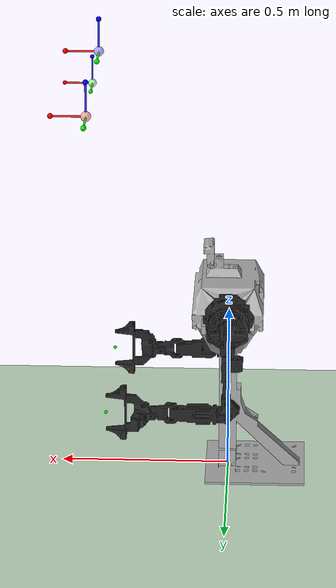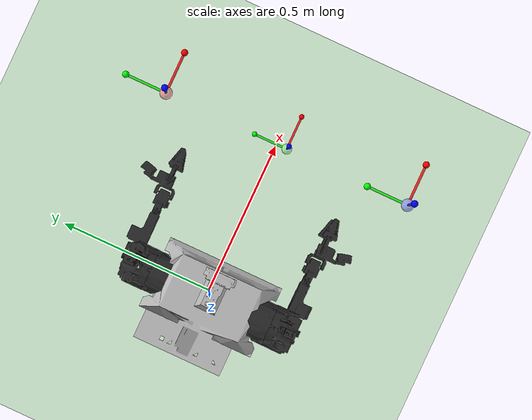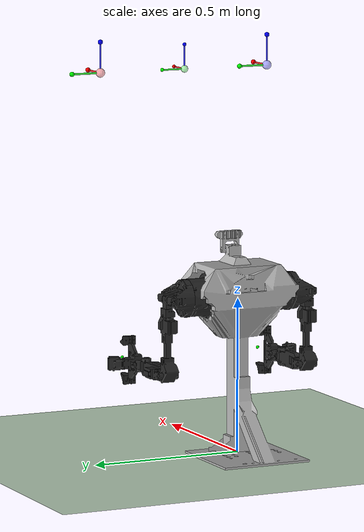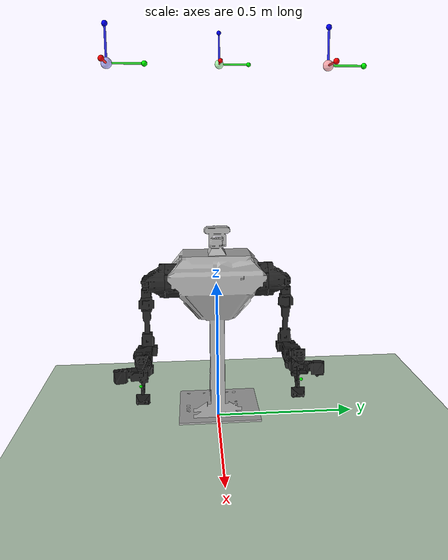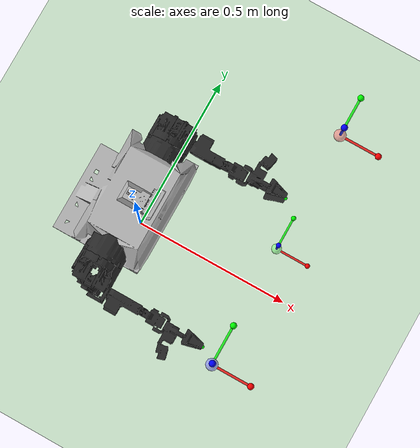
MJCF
<mujoco model="Bessica_D_v1_1_skeleton">
  <compiler angle="radian" meshdir="../../meshes/Bessica_D_v1_1/SkeletonOnly/"/>

  <asset>
    <mesh name="base_link" file="base_link.STL"/>
    <mesh name="head" file="head.STL"/>
    <mesh name="right_arm_base_link" file="right_arm_base_link.STL"/>
    <mesh name="right_arm_link1" file="right_arm_link1.STL"/>
    <mesh name="right_arm_link2" file="right_arm_link2.STL"/>
    <mesh name="right_arm_link3" file="right_arm_link3.STL"/>
    <mesh name="right_arm_link4" file="right_arm_link4.STL"/>
    <mesh name="right_arm_link5" file="right_arm_link5.STL"/>
    <mesh name="right_arm_link6" file="right_arm_link6.STL"/>
    <mesh name="right_arm_link7" file="right_arm_link7.STL"/>
    <mesh name="right_arm_gripper_left_finger" file="right_arm_gripper_left_finger.STL"/>
    <mesh name="right_arm_gripper_right_finger" file="right_arm_gripper_right_finger.STL"/>
    <mesh name="left_arm_base_link" file="left_arm_base_link.STL"/>
    <mesh name="left_arm_link1" file="left_arm_link1.STL"/>
    <mesh name="left_arm_link2" file="left_arm_link2.STL"/>
    <mesh name="left_arm_link3" file="left_arm_link3.STL"/>
    <mesh name="left_arm_link4" file="left_arm_link4.STL"/>
    <mesh name="left_arm_link5" file="left_arm_link5.STL"/>
    <mesh name="left_arm_link6" file="left_arm_link6.STL"/>
    <mesh name="left_arm_link7" file="left_arm_link7.STL"/>
    <mesh name="left_arm_gripper_right_finger" file="left_arm_gripper_right_finger.STL"/>
    <mesh name="left_arm_gripper_left_finger" file="left_arm_gripper_left_finger.STL"/>
    <texture builtin="gradient" height="100" rgb1=".4 .5 .6" rgb2="0 0 0" type="skybox" width="100" />
    <texture builtin="checker" height="100" name="texplane" rgb1="1 1 1" rgb2=".8 .9 1" type="2d" width="100" />
    <material name="MatPlane" reflectance="0.5" texrepeat="1 1" texture="texplane" texuniform="true" />
    <material name="white" rgba="1 1 1 1" shininess="0.5" specular="0.1" />
    <material name="black" rgba="0.15 0.15 0.15 1" shininess="0.2" specular="0.05" />
    <material name="invisible" rgba="1 1 1 0" shininess="0" specular="0" />
  </asset>

  <worldbody>
    <geom conaffinity="1" condim="3" contype="1" friction="1 .1 .1" group="2" material="MatPlane" name="floor" pos="0 0 0" rgba="0.8 0.9 0.8 1" size="10 10 0.125" type="plane" />
    <light castshadow="false" cutoff="100" diffuse="1 1 1" dir="-0 0 -1.3" directional="true" exponent="1" pos="0 0 1.3" specular=".1 .1 .1" />
    <body name="base_link" pos="0 0 0" quat="1 0 0 0">
      <geom type="mesh" contype="0" conaffinity="0" group="1" density="0" rgba="0.7 0.7 0.7 1" mesh="base_link"/>
      <geom type="mesh" rgba="0.7 0.7 0.7 1" mesh="base_link"/>
      <geom pos="0.0608245 0.00175926 0.700041" type="mesh" contype="0" conaffinity="0" group="1" density="0" rgba="0.7 0.7 0.7 1" mesh="head"/>
      <geom pos="0.0608245 0.00175926 0.700041" type="mesh" rgba="0.7 0.7 0.7 1" mesh="head"/>
      <geom pos="-5.01018e-07 -0.0899997 0.514501" quat="1.34924e-11 -3.67321e-06 -1 3.67321e-06" type="mesh" contype="0" conaffinity="0" group="1" density="0" rgba="0.15 0.15 0.15 1" mesh="right_arm_base_link"/>
      <geom pos="-5.01018e-07 -0.0899997 0.514501" quat="1.34924e-11 -3.67321e-06 -1 3.67321e-06" type="mesh" rgba="0.15 0.15 0.15 1" mesh="right_arm_base_link"/>
      <geom pos="8.16691e-09 0.09 0.5145" quat="0 0 -0.707107 -0.707107" type="mesh" contype="0" conaffinity="0" group="1" density="0" rgba="0.15 0.15 0.15 1" mesh="left_arm_base_link"/>
      <geom pos="8.16691e-09 0.09 0.5145" quat="0 0 -0.707107 -0.707107" type="mesh" rgba="0.15 0.15 0.15 1" mesh="left_arm_base_link"/>
      <body name="right_arm_link1" pos="4.86521e-05 -0.2046 0.514502" quat="1.34924e-11 -3.67321e-06 -1 3.67321e-06">
        <inertial pos="0.000110932 -0.00312062 0.000177905" quat="0.503324 0.499404 0.49881 0.498447" mass="0.208266" diaginertia="0.00034002 0.000262863 0.000150646"/>
        <joint name="right_arm_joint1" pos="0 0 0" axis="0 -1 0" range="-2.749 2.749" actuatorfrcrange="-5 5"/>
        <geom type="mesh" contype="0" conaffinity="0" group="1" density="0" rgba="0.15 0.15 0.15 1" mesh="right_arm_link1"/>
        <geom type="mesh" rgba="0.15 0.15 0.15 1" mesh="right_arm_link1"/>
        <body name="right_arm_link2" pos="0 -0.04286 0" quat="0.707105 0 0.707108 0">
          <inertial pos="-0.0297081 -0.000293736 -0.000469869" quat="0.480696 0.536148 0.512721 0.46754" mass="0.0472691" diaginertia="1.62077e-05 1.58746e-05 7.75482e-06"/>
          <joint name="right_arm_joint2" pos="0 0 0" axis="0 0 1" range="-0.1 3.1416" actuatorfrcrange="-5 5"/>
          <geom type="mesh" contype="0" conaffinity="0" group="1" density="0" rgba="0.15 0.15 0.15 1" mesh="right_arm_link2"/>
          <geom type="mesh" rgba="0.15 0.15 0.15 1" mesh="right_arm_link2"/>
          <body name="right_arm_link3" pos="-0.06455 0 -0.0003" quat="-2.59734e-06 0.707105 -2.59735e-06 -0.707108">
            <inertial pos="-0.00359313 -0.000221911 0.094469" quat="0.709839 0.0300787 0.0347342 0.702864" mass="0.140452" diaginertia="8.80484e-05 7.8681e-05 5.52303e-05"/>
            <joint name="right_arm_joint3" pos="0 0 0" axis="0 0 1" range="-2.79 2.79" actuatorfrcrange="-5 5"/>
            <geom type="mesh" contype="0" conaffinity="0" group="1" density="0" rgba="0.15 0.15 0.15 1" mesh="right_arm_link3"/>
            <geom type="mesh" rgba="0.15 0.15 0.15 1" mesh="right_arm_link3"/>
            <body name="right_arm_link4" pos="-1.8989e-05 -4.9997e-05 0.1816" quat="0.499998 0.5 0.5 -0.500002">
              <inertial pos="-2.80229e-05 0.0241583 4.84136e-05" quat="1 0 0 -0.000169427" mass="0.0427207" diaginertia="1.04868e-05 8.49768e-06 8.00565e-06"/>
              <joint name="right_arm_joint4" pos="0 0 0" axis="0 0 1" range="-0.5236 2.95" actuatorfrcrange="-5 5"/>
              <geom type="mesh" contype="0" conaffinity="0" group="1" density="0" rgba="0.15 0.15 0.15 1" mesh="right_arm_link4"/>
              <geom type="mesh" rgba="0.15 0.15 0.15 1" mesh="right_arm_link4"/>
              <body name="right_arm_link5" pos="0 0.0488 0.000100003" quat="-0.5 0.5 0.5 0.5">
                <inertial pos="-0.00180911 -0.000196778 0.0430793" quat="0.96714 0.0368465 0.108778 0.226828" mass="0.110397" diaginertia="8.7423e-05 8.69117e-05 4.35431e-05"/>
                <joint name="right_arm_joint5" pos="0 0 0" axis="0 0 1" range="-2.79 2.79" actuatorfrcrange="-5 5"/>
                <geom type="mesh" contype="0" conaffinity="0" group="1" density="0" rgba="0.15 0.15 0.15 1" mesh="right_arm_link5"/>
                <geom type="mesh" rgba="0.15 0.15 0.15 1" mesh="right_arm_link5"/>
                <body name="right_arm_link6" pos="0.00289 -0.0020761 0.10801" quat="0.707105 -0.707108 0 0">
                  <inertial pos="0.000365898 -0.0257376 -4.10017e-05" quat="0.999601 0.00397576 0.000622093 -0.0279465" mass="0.0345707" diaginertia="1.56449e-05 1.27188e-05 9.19996e-06"/>
                  <joint name="right_arm_joint6" pos="0 0 0" axis="0 0 -1" range="-1.675 1.675" actuatorfrcrange="-5 5"/>
                  <geom type="mesh" contype="0" conaffinity="0" group="1" density="0" rgba="0.15 0.15 0.15 1" mesh="right_arm_link6"/>
                  <geom type="mesh" rgba="0.15 0.15 0.15 1" mesh="right_arm_link6"/>
                  <body name="right_arm_link7" pos="-0.0015 -0.05561 0" quat="0.499998 0.5 -0.500002 -0.5">
                    <inertial pos="0.0415076 -0.000152826 0.0262967" quat="0.698357 0.698702 -0.109714 0.109886" mass="0.134443" diaginertia="9.59304e-05 8.33778e-05 4.31456e-05"/>
                    <joint name="right_arm_joint7" pos="0 0 0" axis="0 0 1" range="-1.448 1.448" actuatorfrcrange="-5 5"/>
                    <geom type="mesh" contype="0" conaffinity="0" group="1" density="0" rgba="0.15 0.15 0.15 1" mesh="right_arm_link7"/>
                    <geom type="mesh" rgba="0.15 0.15 0.15 1" mesh="right_arm_link7"/>
                    <geom pos="0.14128 -0.0505 0.00015" quat="0.707105 -0.707108 0 0" type="mesh" contype="0" conaffinity="0" group="1" density="0" rgba="0.15 0.15 0.15 1" mesh="right_arm_gripper_left_finger"/>
                    <geom pos="0.14128 -0.0505 0.00015" quat="0.707105 -0.707108 0 0" type="mesh" rgba="0.15 0.15 0.15 1" mesh="right_arm_gripper_left_finger"/>
                    <geom pos="0.14128 0.0505 0.00015" quat="0.707105 0.707108 0 0" type="mesh" contype="0" conaffinity="0" group="1" density="0" rgba="0.15 0.15 0.15 1" mesh="right_arm_gripper_right_finger"/>
                    <geom pos="0.14128 0.0505 0.00015" quat="0.707105 0.707108 0 0" type="mesh" rgba="0.15 0.15 0.15 1" mesh="right_arm_gripper_right_finger"/>
                    <geom size="0.005" pos="0.14128 0 0.00015" contype="0" conaffinity="0" group="1" density="0" rgba="0 1 0 1"/>
                    <!-- Gripper center site (between fingers) -->
                    <site name="ik_offset_right_gripper" pos="0.14128 0 0.00015" size="0.005" rgba="1 0 0 0.5" />
                  </body>
                </body>
              </body>
            </body>
          </body>
        </body>
      </body>
      <body name="left_arm_link1" pos="-4.99893e-05 0.2046 0.5145" quat="0 0 -0.707107 0.707107">
        <inertial pos="-0.000114066 0.000187361 -0.00370369" quat="-0.000282854 0.70515 -0.00280194 0.709053" mass="0.197841" diaginertia="0.000335797 0.000260031 0.000148034"/>
        <joint name="left_arm_joint1" pos="0 0 0" axis="0 0 1" range="-2.749 2.749" actuatorfrcrange="-5 5"/>
        <geom type="mesh" contype="0" conaffinity="0" group="1" density="0" rgba="0.15 0.15 0.15 1" mesh="left_arm_link1"/>
        <geom type="mesh" rgba="0.15 0.15 0.15 1" mesh="left_arm_link1"/>
        <body name="left_arm_link2" pos="0 0 -0.04286" quat="0.5 0.5 -0.5 -0.5">
          <inertial pos="-0.0297081 -0.000293734 -0.000469873" quat="0.480696 0.536148 0.512721 0.46754" mass="0.0472691" diaginertia="1.62077e-05 1.58746e-05 7.75482e-06"/>
          <joint name="left_arm_joint2" pos="0 0 0" axis="0 0 1" range="-0.1 3.14159" actuatorfrcrange="-5 5"/>
          <geom type="mesh" contype="0" conaffinity="0" group="1" density="0" rgba="0.15 0.15 0.15 1" mesh="left_arm_link2"/>
          <geom type="mesh" rgba="0.15 0.15 0.15 1" mesh="left_arm_link2"/>
          <body name="left_arm_link3" pos="-0.06455 0 -0.000299996" quat="0.707107 0 -0.707107 0">
            <inertial pos="-0.00359314 -0.000221914 0.094469" quat="0.709839 0.0300787 0.0347342 0.702864" mass="0.140452" diaginertia="8.80484e-05 7.8681e-05 5.52303e-05"/>
            <joint name="left_arm_joint3" pos="0 0 0" axis="0 0 -1" range="-2.79 2.79" actuatorfrcrange="-5 5"/>
            <geom type="mesh" contype="0" conaffinity="0" group="1" density="0" rgba="0.15 0.15 0.15 1" mesh="left_arm_link3"/>
            <geom type="mesh" rgba="0.15 0.15 0.15 1" mesh="left_arm_link3"/>
            <body name="left_arm_link4" pos="-1.89942e-05 -5e-05 0.1816" quat="0.5 0.5 -0.5 0.5">
              <inertial pos="2.80229e-05 -0.0241582 4.84136e-05" quat="1 0 0 -0.000169427" mass="0.0427207" diaginertia="1.04868e-05 8.49768e-06 8.00565e-06"/>
              <joint name="left_arm_joint4" pos="0 0 0" axis="0 0 1" range="-0.5236 2.95" actuatorfrcrange="-5 5"/>
              <geom type="mesh" contype="0" conaffinity="0" group="1" density="0" rgba="0.15 0.15 0.15 1" mesh="left_arm_link4"/>
              <geom type="mesh" rgba="0.15 0.15 0.15 1" mesh="left_arm_link4"/>
              <body name="left_arm_link5" pos="0 -0.0488 0.0001" quat="0.5 0.5 0.5 -0.5">
                <inertial pos="-0.00180911 -0.000196785 0.0430793" quat="0.96714 0.0368465 0.108778 0.226827" mass="0.110397" diaginertia="8.7423e-05 8.69117e-05 4.35431e-05"/>
                <joint name="left_arm_joint5" pos="0 0 0" axis="0 0 -1" range="-2.79 2.79" actuatorfrcrange="-5 5"/>
                <geom type="mesh" contype="0" conaffinity="0" group="1" density="0" rgba="0.15 0.15 0.15 1" mesh="left_arm_link5"/>
                <geom type="mesh" rgba="0.15 0.15 0.15 1" mesh="left_arm_link5"/>
                <body name="left_arm_link6" pos="0.00289 -0.00207607 0.10801" quat="0.707107 -0.707107 0 0">
                  <inertial pos="0.000365898 -0.0257376 -4.10017e-05" quat="0.999601 0.00397576 0.000622093 -0.0279465" mass="0.0345707" diaginertia="1.56449e-05 1.27188e-05 9.19996e-06"/>
                  <joint name="left_arm_joint6" pos="0 0 0" axis="0 0 -1" range="-1.675 1.675" actuatorfrcrange="-5 5"/>
                  <geom type="mesh" contype="0" conaffinity="0" group="1" density="0" rgba="0.15 0.15 0.15 1" mesh="left_arm_link6"/>
                  <geom type="mesh" rgba="0.15 0.15 0.15 1" mesh="left_arm_link6"/>
                  <body name="left_arm_link7" pos="-0.0015 -0.0563101 0.00415239" quat="0.5 0.5 -0.5 -0.5">
                    <inertial pos="0.0410511 -0.00430969 0.0266716" quat="0.697385 0.697718 -0.115769 0.115941" mass="0.130828" diaginertia="9.49108e-05 8.29883e-05 4.23029e-05"/>
                    <joint name="left_arm_joint7" pos="0 0 0" axis="0 0 -1" range="-1.448 1.448" actuatorfrcrange="-5 5"/>
                    <geom type="mesh" contype="0" conaffinity="0" group="1" density="0" rgba="0.15 0.15 0.15 1" mesh="left_arm_link7"/>
                    <geom type="mesh" rgba="0.15 0.15 0.15 1" mesh="left_arm_link7"/>
                    <geom pos="0.14058 -0.054652 0.00015" quat="0.707105 -0.707108 0 0" type="mesh" contype="0" conaffinity="0" group="1" density="0" rgba="0.15 0.15 0.15 1" mesh="left_arm_gripper_left_finger"/>
                    <geom pos="0.14058 -0.054652 0.00015" quat="0.707105 -0.707108 0 0" type="mesh" rgba="0.15 0.15 0.15 1" mesh="left_arm_gripper_left_finger"/>
                    <geom pos="0.14058 0.046348 0.00015" quat="0.707105 0.707108 0 0" type="mesh" contype="0" conaffinity="0" group="1" density="0" rgba="0.15 0.15 0.15 1" mesh="left_arm_gripper_right_finger"/>
                    <geom pos="0.14058 0.046348 0.00015" quat="0.707105 0.707108 0 0" type="mesh" rgba="0.15 0.15 0.15 1" mesh="left_arm_gripper_right_finger"/>
                    <geom size="0.005" pos="0.14058 -0.0041524 0.00015" contype="0" conaffinity="0" group="1" density="0" rgba="0 1 0 1"/>
                    <!-- Gripper center site (between fingers) -->
                    <site name="ik_offset_left_gripper" pos="0.14058 -0.0041524 0.00015" size="0.005" rgba="0 0 1 0.5" />
                  </body>
                </body>
              </body>
            </body>
          </body>
        </body>
      </body>
    </body>

    <!-- Interactive mocap targets for IK visualization -->
    <!-- Left arm target: Red coordinate frame -->
    <body name="ik_target_left_gripper" mocap="true" pos="0.4 0.3 1.2">
      <!-- X axis - Red -->
      <geom type="cylinder" size="0.003 0.05" rgba="1 0 0 0.8" contype="0" conaffinity="0" fromto="0 0 0 0.1 0 0" />
      <geom type="sphere" size="0.008" rgba="1 0 0 0.9" contype="0" conaffinity="0" pos="0.1 0 0" />
      <!-- Y axis - Green -->
      <geom type="cylinder" size="0.003 0.05" rgba="0 1 0 0.8" contype="0" conaffinity="0" fromto="0 0 0 0 0.1 0" />
      <geom type="sphere" size="0.008" rgba="0 1 0 0.9" contype="0" conaffinity="0" pos="0 0.1 0" />
      <!-- Z axis - Blue -->
      <geom type="cylinder" size="0.003 0.05" rgba="0 0 1 0.8" contype="0" conaffinity="0" fromto="0 0 0 0 0 0.1" />
      <geom type="sphere" size="0.008" rgba="0 0 1 0.9" contype="0" conaffinity="0" pos="0 0 0.1" />
      <!-- Origin sphere -->
      <geom type="sphere" size="0.015" rgba="1 0.5 0.5 0.6" contype="0" conaffinity="0" pos="0 0 0" />
    </body>

    <!-- Right arm target: Blue coordinate frame -->
    <body name="ik_target_right_gripper" mocap="true" pos="0.4 -0.3 1.2">
      <!-- X axis - Red -->
      <geom type="cylinder" size="0.003 0.05" rgba="1 0 0 0.8" contype="0" conaffinity="0" fromto="0 0 0 0.1 0 0" />
      <geom type="sphere" size="0.008" rgba="1 0 0 0.9" contype="0" conaffinity="0" pos="0.1 0 0" />
      <!-- Y axis - Green -->
      <geom type="cylinder" size="0.003 0.05" rgba="0 1 0 0.8" contype="0" conaffinity="0" fromto="0 0 0 0 0.1 0" />
      <geom type="sphere" size="0.008" rgba="0 1 0 0.9" contype="0" conaffinity="0" pos="0 0.1 0" />
      <!-- Z axis - Blue -->
      <geom type="cylinder" size="0.003 0.05" rgba="0 0 1 0.8" contype="0" conaffinity="0" fromto="0 0 0 0 0 0.1" />
      <geom type="sphere" size="0.008" rgba="0 0 1 0.9" contype="0" conaffinity="0" pos="0 0 0.1" />
      <!-- Origin sphere -->
      <geom type="sphere" size="0.015" rgba="0.5 0.5 1 0.6" contype="0" conaffinity="0" pos="0 0 0" />
    </body>

    <!-- Center target: Green coordinate frame -->
    <body name="ik_target_center" mocap="true" pos="0.4 0.0 1.2">
      <!-- X axis - Red -->
      <geom type="cylinder" size="0.0025 0.04" rgba="1 0 0 0.8" contype="0" conaffinity="0" fromto="0 0 0 0.08 0 0" />
      <geom type="sphere" size="0.006" rgba="1 0 0 0.9" contype="0" conaffinity="0" pos="0.08 0 0" />
      <!-- Y axis - Green -->
      <geom type="cylinder" size="0.0025 0.04" rgba="0 1 0 0.8" contype="0" conaffinity="0" fromto="0 0 0 0 0.08 0" />
      <geom type="sphere" size="0.006" rgba="0 1 0 0.9" contype="0" conaffinity="0" pos="0 0.08 0" />
      <!-- Z axis - Blue -->
      <geom type="cylinder" size="0.0025 0.04" rgba="0 0 1 0.8" contype="0" conaffinity="0" fromto="0 0 0 0 0 0.08" />
      <geom type="sphere" size="0.006" rgba="0 0 1 0.9" contype="0" conaffinity="0" pos="0 0 0.08" />
      <!-- Origin sphere -->
      <geom type="sphere" size="0.012" rgba="0.5 1 0.5 0.6" contype="0" conaffinity="0" pos="0 0 0" />
    </body>
  </worldbody>

  <contact>
    <exclude body1="base_link" body2="left_arm_link1" />
    <exclude body1="left_arm_link1" body2="left_arm_link2" />
    <exclude body1="left_arm_link1" body2="left_arm_link3" />
    <exclude body1="left_arm_link2" body2="left_arm_link3" />
    <exclude body1="left_arm_link3" body2="left_arm_link4" />
    <exclude body1="left_arm_link4" body2="left_arm_link5" />
    <exclude body1="left_arm_link5" body2="left_arm_link6" />
    <exclude body1="left_arm_link6" body2="left_arm_link7" />

    <exclude body1="base_link" body2="right_arm_link1" />
    <exclude body1="right_arm_link1" body2="right_arm_link2" />
    <exclude body1="right_arm_link1" body2="right_arm_link3" />
    <exclude body1="right_arm_link2" body2="right_arm_link3" />
    <exclude body1="right_arm_link3" body2="right_arm_link4" />
    <exclude body1="right_arm_link4" body2="right_arm_link5" />
    <exclude body1="right_arm_link5" body2="right_arm_link6" />
    <exclude body1="right_arm_link6" body2="right_arm_link7" />
  </contact>

</mujoco>
